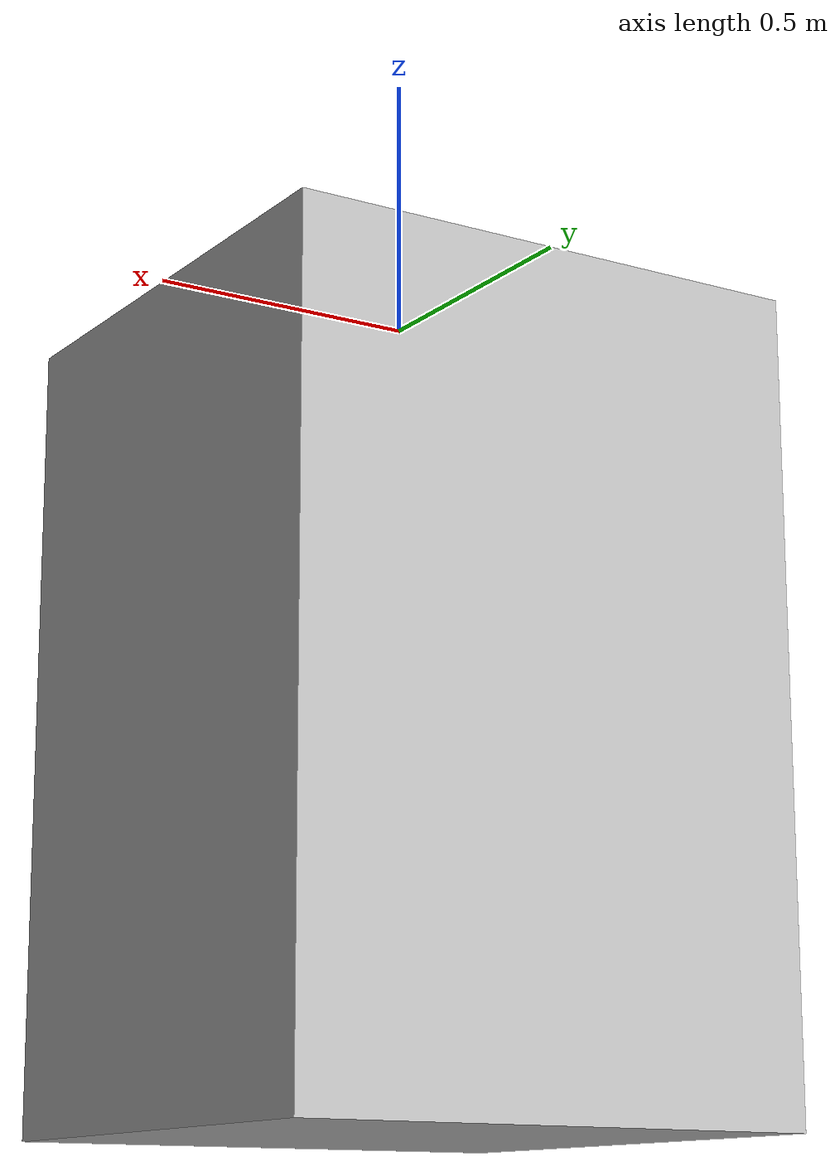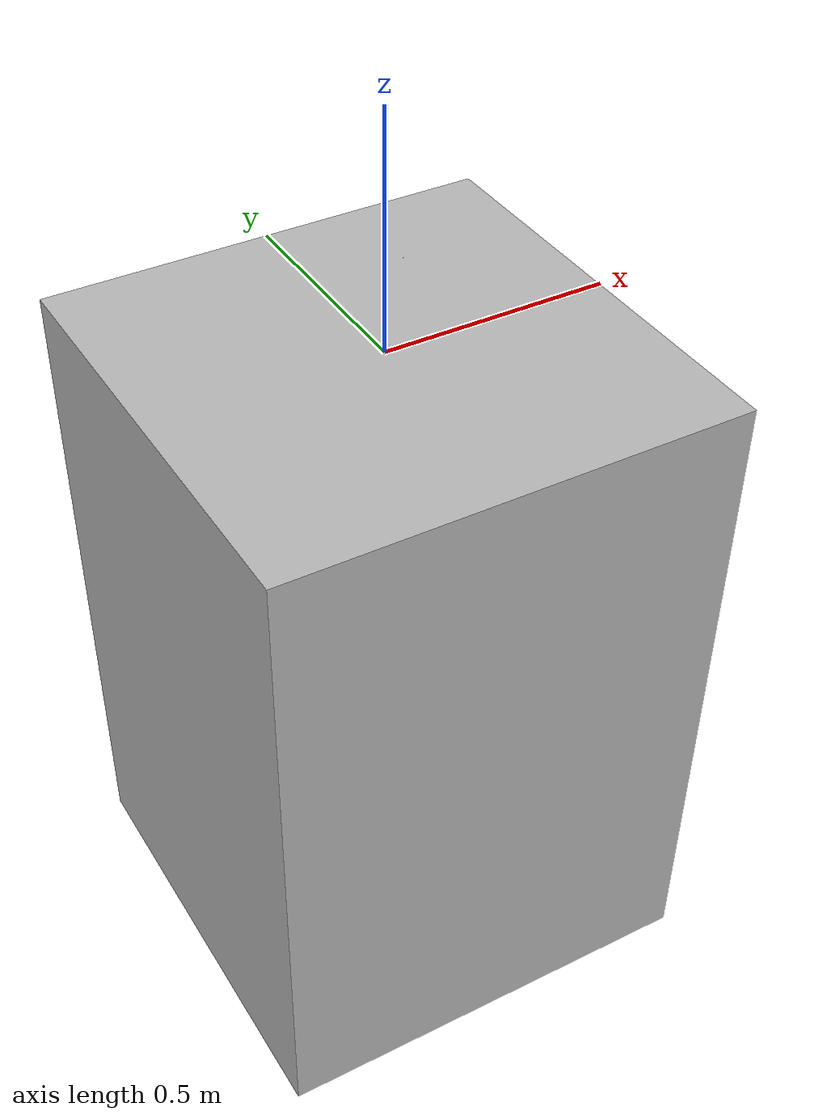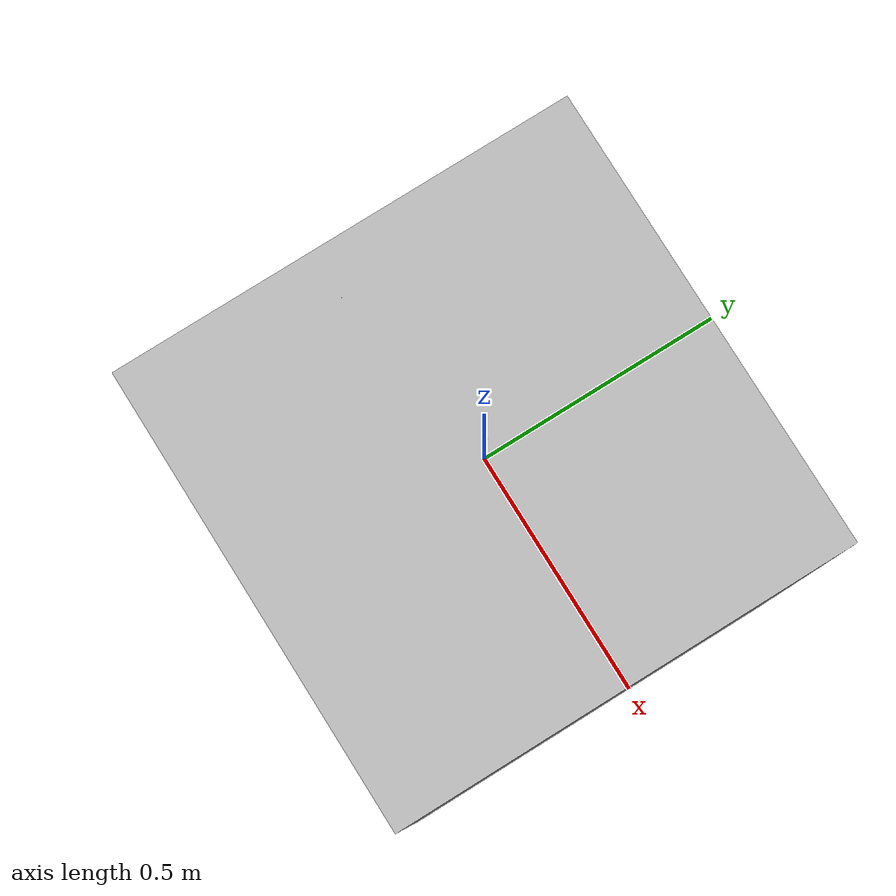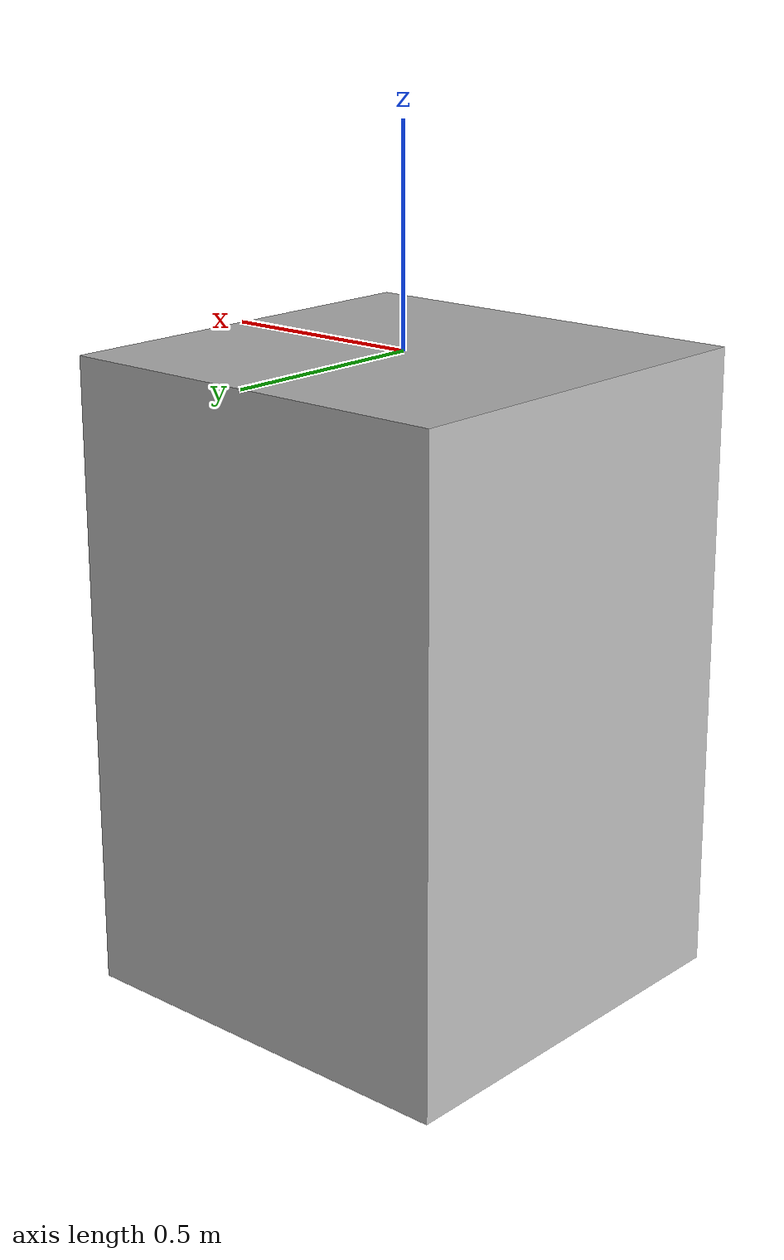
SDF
<?xml version='1.0'?>
<sdf version='1.6'>
  <model name='suspended_landing_platform'>
    <link name='link_suspended_landing_platform'>
      <inertial>
        <mass>1</mass>
        <inertia>
          <ixx>0.166667</ixx>
          <ixy>0</ixy>
          <ixz>0</ixz>
          <iyy>0.166667</iyy>
          <iyz>0</iyz>
          <izz>0.166667</izz>
        </inertia>
        <pose>0 0 0 0 -0 0</pose>
      </inertial>
      <self_collide>0</self_collide>
      <enable_wind>0</enable_wind>
      <kinematic>0</kinematic>
      <pose>0 0 0 0 -0 0</pose>
      <gravity>1</gravity>
      <visual name='visual'>
        <pose frame=''>0 0 0 0 -0 0</pose>
        <geometry>
          <mesh>
            <uri>model://suspended_landing_platform/meshes/suspended_landing_platform.obj</uri>
            <scale>1 1 1</scale>
          </mesh>
        </geometry>
        <transparency>0</transparency>
        <cast_shadows>1</cast_shadows>
      </visual>
      <collision name='collision'>
        <laser_retro>0</laser_retro>
        <max_contacts>10</max_contacts>
        <pose>0 0 -0.75 0 -0 0</pose>
        <geometry>
          <box>
            <size>1 1 1.5</size>
          </box>
        </geometry>
        <surface>
          <friction>
            <ode>
              <mu>100</mu>
              <mu2>100</mu2>
              <fdir1>0 0 0</fdir1>
              <slip1>0</slip1>
              <slip2>0</slip2>
            </ode>
            <torsional>
              <coefficient>1</coefficient>
              <patch_radius>1</patch_radius>
              <surface_radius>1</surface_radius>
              <use_patch_radius>1</use_patch_radius>
              <ode>
                <slip>0</slip>
              </ode>
            </torsional>
          </friction>
          <bounce>
            <restitution_coefficient>1</restitution_coefficient>
            <threshold>1e+06</threshold>
          </bounce>
          <contact>
            <collide_without_contact>0</collide_without_contact>
            <collide_without_contact_bitmask>1</collide_without_contact_bitmask>
            <collide_bitmask>1</collide_bitmask>
            <ode>
              <soft_cfm>0</soft_cfm>
              <soft_erp>0.2</soft_erp>
              <kp>1e+13</kp>
              <kd>1</kd>
              <max_vel>0.01</max_vel>
              <min_depth>0</min_depth>
            </ode>
            <bullet>
              <split_impulse>1</split_impulse>
              <split_impulse_penetration_threshold>-0.01</split_impulse_penetration_threshold>
              <soft_cfm>0</soft_cfm>
              <soft_erp>0.2</soft_erp>
              <kp>1e+13</kp>
              <kd>1</kd>
            </bullet>
          </contact>
        </surface>
      </collision>
    </link>
    <static>1</static>
    <allow_auto_disable>1</allow_auto_disable>
  </model>
</sdf>
